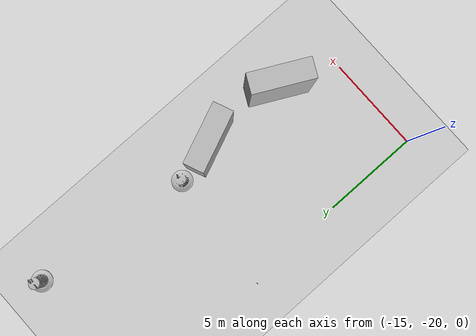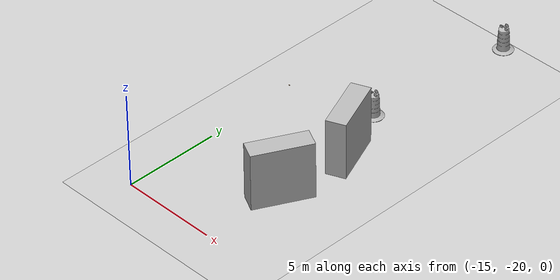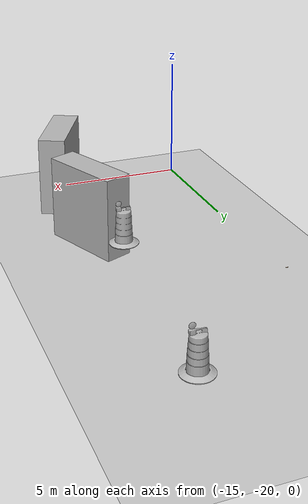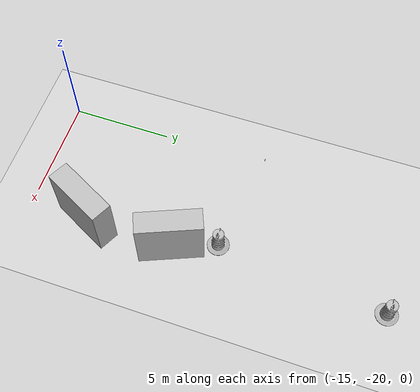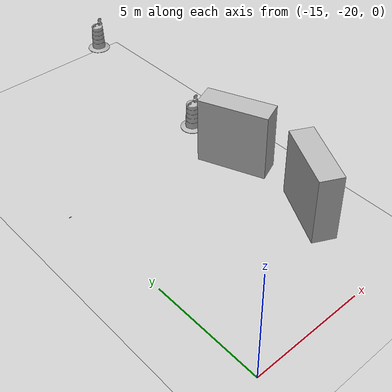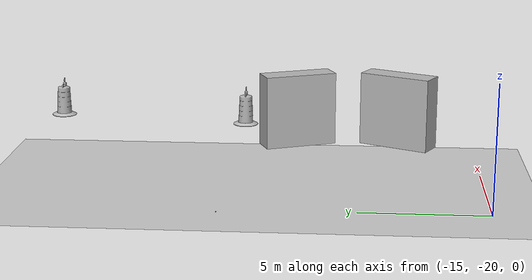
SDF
<sdf version="1.6">
 <world name="default">
  <model name="ground_plane">
   <static>1</static>
   <link name="link">
    <collision name="collision">
     <geometry><plane><normal>0 0 1</normal><size>100 100</size></plane></geometry>
     <surface><friction><ode><mu>100</mu><mu2>50</mu2></ode></friction></surface>
    </collision>
    <visual name="visual">
     <cast_shadows>0</cast_shadows>
     <geometry><plane><normal>0 0 1</normal><size>100 100</size></plane></geometry>
     <material>
      <script><uri>file://media/materials/scripts/gazebo.material</uri><name>Gazebo/Grey</name></script>
     </material>
    </visual>
   </link>
  </model>
  <model name="Construction Barrel">
   <link name="link">
    <inertial>
     <pose>0 0 0.4 0 -0 0</pose>
     <mass>500</mass>
     <inertia><ixx>51.2096</ixx><iyy>51.2096</iyy><izz>25</izz><ixy>0</ixy><ixz>0</ixz><iyz>0</iyz></inertia>
    </inertial>
    <collision name="collision">
     <geometry><mesh><uri>model://construction_barrel/meshes/construction_barrel.dae</uri></mesh></geometry>
    </collision>
    <visual name="visual">
     <geometry><mesh><uri>model://construction_barrel/meshes/construction_barrel.dae</uri></mesh></geometry>
    </visual>
   </link>
   <pose>-8.41799 -2.52774 1.88896 0.007893 2e-06 0.000312</pose>
  </model>
  <model name="wood_block_10_2_1cm">
   <link name="link">
    <pose>0 0 0.005 0 -0 0</pose>
    <inertial>
     <mass>0.0125</mass>
     <inertia>
      <ixx>7.55208e-07</ixx>
      <ixy>0</ixy>
      <ixz>0</ixz>
      <iyy>1.05208e-05</iyy>
      <iyz>0</iyz>
      <izz>1.10677e-05</izz>
     </inertia>
    </inertial>
    <collision name="collision">
     <geometry><box><size>0.1 0.025 0.01</size></box></geometry>
     <surface>
      <contact>
       <poissons_ratio>0.347</poissons_ratio>
       <elastic_modulus>8.8e+09</elastic_modulus>
       <ode><kp>100000</kp><kd>1</kd><max_vel>1</max_vel><min_depth>0.001</min_depth></ode>
      </contact>
      <friction>
       <torsional>
        <coefficient>1</coefficient>
        <use_patch_radius>0</use_patch_radius>
        <surface_radius>0.05</surface_radius>
       </torsional>
      </friction>
     </surface>
    </collision>
    <visual name="visual">
     <geometry><box><size>0.1 0.025 0.01</size></box></geometry>
     <material>
      <script><uri>file://media/materials/scripts/gazebo.material</uri><name>Gazebo/Wood</name></script>
     </material>
    </visual>
   </link>
   <pose>-15.2712 -9.75357 -0.001 0 -0 4e-06</pose>
  </model>
  <model name="brick_box_3x1x3_clone">
   <static>1</static>
   <link name="chassis">
    <pose>0 0 1.5 0 -0 0</pose>
    <collision name="collision"><geometry><box><size>3 1 3</size></box></geometry></collision>
    <visual name="visual">
     <geometry><mesh><uri>model://brick_box_3x1x3/meshes/simple_box.dae</uri><scale>3 1 3</scale></mesh></geometry>
     <material>
      <script>
       <uri>model://brick_box_3x1x3/materials/scripts</uri>
       <uri>model://brick_box_3x1x3/materials/textures</uri>
       <name>BrickBox/Diffuse</name>
      </script>
     </material>
    </visual>
   </link>
   <pose>-8.72064 -12.47 0.90036 0 0 -1.1758</pose>
  </model>
  <model name="Construction Barrel_clone_clone">
   <link name="link">
    <inertial>
     <pose>0 0 0.4 0 -0 0</pose>
     <mass>500</mass>
     <inertia><ixx>51.2096</ixx><iyy>51.2096</iyy><izz>25</izz><ixy>0</ixy><ixz>0</ixz><iyz>0</iyz></inertia>
    </inertial>
    <collision name="collision">
     <geometry><mesh><uri>model://construction_barrel/meshes/construction_barrel.dae</uri></mesh></geometry>
    </collision>
    <visual name="visual">
     <geometry><mesh><uri>model://construction_barrel/meshes/construction_barrel.dae</uri></mesh></geometry>
    </visual>
   </link>
   <pose>-9.21451 -10.3442 1.82726 0.007897 6e-06 0.000175</pose>
  </model>
  <model name="brick_box_3x1x3_clone_0_clone">
   <static>1</static>
   <link name="chassis">
    <pose>0 0 1.5 0 -0 0</pose>
    <collision name="collision"><geometry><box><size>3 1 3</size></box></geometry></collision>
    <visual name="visual">
     <geometry><mesh><uri>model://brick_box_3x1x3/meshes/simple_box.dae</uri><scale>3 1 3</scale></mesh></geometry>
     <material>
      <script>
       <uri>model://brick_box_3x1x3/materials/scripts</uri>
       <uri>model://brick_box_3x1x3/materials/textures</uri>
       <name>BrickBox/Diffuse</name>
      </script>
     </material>
    </visual>
   </link>
   <pose>-8.81558 -16.6419 0.93475 0 0 -2.0421</pose>
  </model>
 </world>
</sdf>
